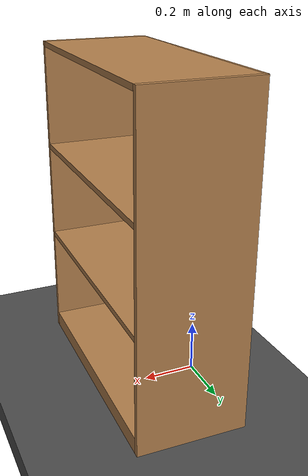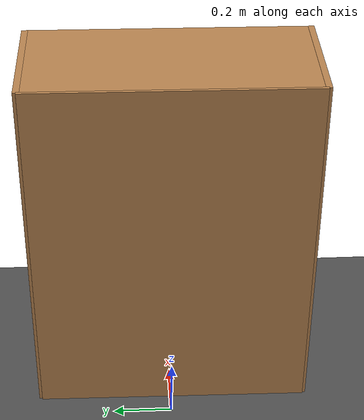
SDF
<sdf version="1.7">
 <world name="default">
  <light name="sun" type="directional">
   <pose>0 0 10 0 -0 0</pose>
   <diffuse>0.8 0.8 0.8 1</diffuse>
   <specular>0.2 0.2 0.2 1</specular>
   <attenuation>
    <range>1000</range>
    <constant>0.9</constant>
    <linear>0.01</linear>
    <quadratic>0.001</quadratic>
   </attenuation>
   <direction>-0.5 0.1 -0.9</direction>
   <spot><inner_angle>0</inner_angle><outer_angle>0</outer_angle><falloff>0</falloff></spot>
  </light>
  <gravity>0 0 -9.8</gravity>
  <magnetic_field>6e-06 2.3e-05 -4.2e-05</magnetic_field>
  <atmosphere type="adiabatic"/>
  <physics type="ode">
   <max_step_size>0.001</max_step_size>
   <real_time_factor>1</real_time_factor>
   <real_time_update_rate>1000</real_time_update_rate>
  </physics>
  <scene><ambient>0.4 0.4 0.4 1</ambient><background>0.7 0.7 0.7 1</background><shadows>1</shadows></scene>
  <spherical_coordinates>
   <surface_model>EARTH_WGS84</surface_model>
   <latitude_deg>0</latitude_deg>
   <longitude_deg>0</longitude_deg>
   <elevation>0</elevation>
   <heading_deg>0</heading_deg>
  </spherical_coordinates>
  <model name="asphalt_plane">
   <static>1</static>
   <link name="link">
    <collision name="collision"><geometry><box><size>19.1857 20 0.1</size></box></geometry></collision>
    <visual name="visual">
     <cast_shadows>0</cast_shadows>
     <geometry><box><size>19.1857 20 0.1</size></box></geometry>
     <material>
      <script>
       <uri>model://asphalt_plane/materials/scripts</uri>
       <uri>model://asphalt_plane/materials/textures</uri>
       <name>vrc/asphalt</name>
      </script>
     </material>
    </visual>
   </link>
   <pose>-0.081989 0.015303 0 0 -0 0</pose>
  </model>
  <model name="bookshelf">
   <static>1</static>
   <link name="link">
    <inertial><mass>1</mass></inertial>
    <collision name="back">
     <pose>0 0.005 0.6 0 -0 0</pose>
     <geometry><box><size>0.9 0.01 1.2</size></box></geometry>
    </collision>
    <visual name="visual1">
     <pose>0 0.005 0.6 0 -0 0</pose>
     <geometry><box><size>0.9 0.01 1.2</size></box></geometry>
     <material>
      <script><uri>file://media/materials/scripts/gazebo.material</uri><name>Gazebo/Wood</name></script>
     </material>
    </visual>
    <collision name="left_side">
     <pose>0.45 -0.195 0.6 0 -0 0</pose>
     <geometry><box><size>0.02 0.4 1.2</size></box></geometry>
    </collision>
    <visual name="visual2">
     <pose>0.45 -0.195 0.6 0 -0 0</pose>
     <geometry><box><size>0.02 0.4 1.2</size></box></geometry>
     <material>
      <script><uri>file://media/materials/scripts/gazebo.material</uri><name>Gazebo/Wood</name></script>
     </material>
    </visual>
    <collision name="right_side">
     <pose>-0.45 -0.195 0.6 0 -0 0</pose>
     <geometry><box><size>0.02 0.4 1.2</size></box></geometry>
    </collision>
    <visual name="visual3">
     <pose>-0.45 -0.195 0.6 0 -0 0</pose>
     <geometry><box><size>0.02 0.4 1.2</size></box></geometry>
     <material>
      <script><uri>file://media/materials/scripts/gazebo.material</uri><name>Gazebo/Wood</name></script>
     </material>
    </visual>
    <collision name="bottom">
     <pose>0 -0.195 0.03 0 -0 0</pose>
     <geometry><box><size>0.88 0.4 0.06</size></box></geometry>
    </collision>
    <visual name="visual4">
     <pose>0 -0.195 0.03 0 -0 0</pose>
     <geometry><box><size>0.88 0.4 0.06</size></box></geometry>
     <material>
      <script><uri>file://media/materials/scripts/gazebo.material</uri><name>Gazebo/Wood</name></script>
     </material>
    </visual>
    <collision name="top">
     <pose>0 -0.195 1.19 0 -0 0</pose>
     <geometry><box><size>0.88 0.4 0.02</size></box></geometry>
    </collision>
    <visual name="visual5">
     <pose>0 -0.195 1.19 0 -0 0</pose>
     <geometry><box><size>0.88 0.4 0.02</size></box></geometry>
     <material>
      <script><uri>file://media/materials/scripts/gazebo.material</uri><name>Gazebo/Wood</name></script>
     </material>
    </visual>
    <collision name="low_shelf">
     <pose>0 -0.195 0.43 0 -0 0</pose>
     <geometry><box><size>0.88 0.4 0.02</size></box></geometry>
    </collision>
    <visual name="visual6">
     <pose>0 -0.195 0.43 0 -0 0</pose>
     <geometry><box><size>0.88 0.4 0.02</size></box></geometry>
     <material>
      <script><uri>file://media/materials/scripts/gazebo.material</uri><name>Gazebo/Wood</name></script>
     </material>
    </visual>
    <collision name="high_shelf">
     <pose>0 -0.195 0.8 0 -0 0</pose>
     <geometry><box><size>0.88 0.4 0.02</size></box></geometry>
    </collision>
    <visual name="visual7">
     <pose>0 -0.195 0.8 0 -0 0</pose>
     <geometry><box><size>0.88 0.4 0.02</size></box></geometry>
     <material>
      <script><uri>file://media/materials/scripts/gazebo.material</uri><name>Gazebo/Wood</name></script>
     </material>
    </visual>
   </link>
   <pose>0.025476 -0.004605 0.05 0 -0 1.55584</pose>
  </model>
 </world>
</sdf>
